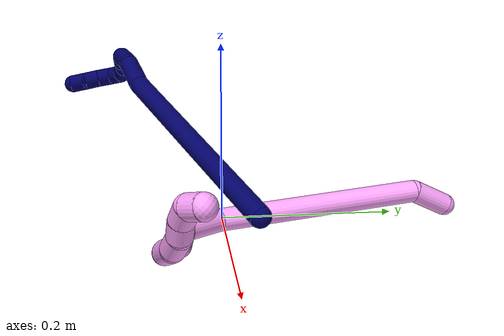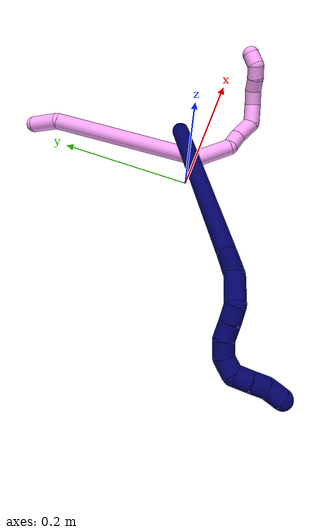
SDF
<sdf version="1.7">
 <world name="default">
  <model name="4">
   <static>0</static>
   <link name="4">
    <collision name="collision-cylinder-e_1_1_4">
     <pose>0.002263 -0.007897 -0.021047 2.78264 0.100343 0.540018</pose>
     <geometry><cylinder><radius>0.0125</radius><length>0.045187</length></cylinder></geometry>
     <surface>
      <friction><ode><mu>1.16</mu><mu2>1.16</mu2><slip1>0</slip1><slip2>0</slip2></ode></friction>
      <contact><ode><kp>1e+06</kp><kd>1</kd><max_vel>0</max_vel><min_depth>0.001</min_depth></ode></contact>
     </surface>
    </collision>
    <visual name="visual-cylinder-e_1_1_4">
     <pose>0.002263 -0.007897 -0.021047 2.78264 0.100343 0.540018</pose>
     <geometry><cylinder><radius>0.0125</radius><length>0.045187</length></cylinder></geometry>
     <material><ambient>1 0.65098 0.996078 1</ambient></material>
    </visual>
    <collision name="collision-cylinder-e_2_4_5">
     <pose>0.058489 -0.083415 -0.116185 2.40182 0.493549 1.15233</pose>
     <geometry><cylinder><radius>0.0125</radius><length>0.227806</length></cylinder></geometry>
     <surface>
      <friction><ode><mu>1.16</mu><mu2>1.16</mu2><slip1>0</slip1><slip2>0</slip2></ode></friction>
      <contact><ode><kp>1e+06</kp><kd>1</kd><max_vel>0</max_vel><min_depth>0.001</min_depth></ode></contact>
     </surface>
    </collision>
    <visual name="visual-cylinder-e_2_4_5">
     <pose>0.058489 -0.083415 -0.116185 2.40182 0.493549 1.15233</pose>
     <geometry><cylinder><radius>0.0125</radius><length>0.227806</length></cylinder></geometry>
     <material><ambient>1 0.65098 0.996078 1</ambient></material>
    </visual>
    <collision name="collision-cylinder-e_3_5_6">
     <pose>0.110232 -0.173163 -0.204871 2.15389 -0.083493 -0.154873</pose>
     <geometry><cylinder><radius>0.0125</radius><length>0.0532</length></cylinder></geometry>
     <surface>
      <friction><ode><mu>1.16</mu><mu2>1.16</mu2><slip1>0</slip1><slip2>0</slip2></ode></friction>
      <contact><ode><kp>1e+06</kp><kd>1</kd><max_vel>0</max_vel><min_depth>0.001</min_depth></ode></contact>
     </surface>
    </collision>
    <visual name="visual-cylinder-e_3_5_6">
     <pose>0.110232 -0.173163 -0.204871 2.15389 -0.083493 -0.154873</pose>
     <geometry><cylinder><radius>0.0125</radius><length>0.0532</length></cylinder></geometry>
     <material><ambient>1 0.65098 0.996078 1</ambient></material>
    </visual>
    <collision name="collision-cylinder-e_4_6_7">
     <pose>0.102267 -0.208069 -0.218458 1.49199 -0.421435 -0.390304</pose>
     <geometry><cylinder><radius>0.0125</radius><length>0.028095</length></cylinder></geometry>
     <surface>
      <friction><ode><mu>1.16</mu><mu2>1.16</mu2><slip1>0</slip1><slip2>0</slip2></ode></friction>
      <contact><ode><kp>1e+06</kp><kd>1</kd><max_vel>0</max_vel><min_depth>0.001</min_depth></ode></contact>
     </surface>
    </collision>
    <visual name="visual-cylinder-e_4_6_7">
     <pose>0.102267 -0.208069 -0.218458 1.49199 -0.421435 -0.390304</pose>
     <geometry><cylinder><radius>0.0125</radius><length>0.028095</length></cylinder></geometry>
     <material><ambient>1 0.65098 0.996078 1</ambient></material>
    </visual>
    <collision name="collision-cylinder-e_5_7_8">
     <pose>0.089416 -0.233741 -0.223483 2.00857 -0.462898 -0.709677</pose>
     <geometry><cylinder><radius>0.0125</radius><length>0.03182</length></cylinder></geometry>
     <surface>
      <friction><ode><mu>1.16</mu><mu2>1.16</mu2><slip1>0</slip1><slip2>0</slip2></ode></friction>
      <contact><ode><kp>1e+06</kp><kd>1</kd><max_vel>0</max_vel><min_depth>0.001</min_depth></ode></contact>
     </surface>
    </collision>
    <visual name="visual-cylinder-e_5_7_8">
     <pose>0.089416 -0.233741 -0.223483 2.00857 -0.462898 -0.709677</pose>
     <geometry><cylinder><radius>0.0125</radius><length>0.03182</length></cylinder></geometry>
     <material><ambient>1 0.65098 0.996078 1</ambient></material>
    </visual>
    <collision name="collision-cylinder-e_6_8_9">
     <pose>0.068033 -0.251804 -0.230907 1.83328 -1.21211 -1.46988</pose>
     <geometry><cylinder><radius>0.0125</radius><length>0.030498</length></cylinder></geometry>
     <surface>
      <friction><ode><mu>1.16</mu><mu2>1.16</mu2><slip1>0</slip1><slip2>0</slip2></ode></friction>
      <contact><ode><kp>1e+06</kp><kd>1</kd><max_vel>0</max_vel><min_depth>0.001</min_depth></ode></contact>
     </surface>
    </collision>
    <visual name="visual-cylinder-e_6_8_9">
     <pose>0.068033 -0.251804 -0.230907 1.83328 -1.21211 -1.46988</pose>
     <geometry><cylinder><radius>0.0125</radius><length>0.030498</length></cylinder></geometry>
     <material><ambient>1 0.65098 0.996078 1</ambient></material>
    </visual>
    <collision name="collision-cylinder-e_7_9_10">
     <pose>0.042667 -0.257197 -0.235618 3.07433 -1.2791 -3.0512</pose>
     <geometry><cylinder><radius>0.0125</radius><length>0.023152</length></cylinder></geometry>
     <surface>
      <friction><ode><mu>1.16</mu><mu2>1.16</mu2><slip1>0</slip1><slip2>0</slip2></ode></friction>
      <contact><ode><kp>1e+06</kp><kd>1</kd><max_vel>0</max_vel><min_depth>0.001</min_depth></ode></contact>
     </surface>
    </collision>
    <visual name="visual-cylinder-e_7_9_10">
     <pose>0.042667 -0.257197 -0.235618 3.07433 -1.2791 -3.0512</pose>
     <geometry><cylinder><radius>0.0125</radius><length>0.023152</length></cylinder></geometry>
     <material><ambient>1 0.65098 0.996078 1</ambient></material>
    </visual>
    <collision name="collision-cylinder-e_8_10_11">
     <pose>0.02324 -0.256218 -0.244368 -2.92361 -0.982772 2.73822</pose>
     <geometry><cylinder><radius>0.0125</radius><length>0.020049</length></cylinder></geometry>
     <surface>
      <friction><ode><mu>1.16</mu><mu2>1.16</mu2><slip1>0</slip1><slip2>0</slip2></ode></friction>
      <contact><ode><kp>1e+06</kp><kd>1</kd><max_vel>0</max_vel><min_depth>0.001</min_depth></ode></contact>
     </surface>
    </collision>
    <visual name="visual-cylinder-e_8_10_11">
     <pose>0.02324 -0.256218 -0.244368 -2.92361 -0.982772 2.73822</pose>
     <geometry><cylinder><radius>0.0125</radius><length>0.020049</length></cylinder></geometry>
     <material><ambient>1 0.65098 0.996078 1</ambient></material>
    </visual>
    <collision name="collision-cylinder-e_9_11_12">
     <pose>0.005469 -0.254442 -0.253199 -2.97456 -1.22012 2.90321</pose>
     <geometry><cylinder><radius>0.0125</radius><length>0.020081</length></cylinder></geometry>
     <surface>
      <friction><ode><mu>1.16</mu><mu2>1.16</mu2><slip1>0</slip1><slip2>0</slip2></ode></friction>
      <contact><ode><kp>1e+06</kp><kd>1</kd><max_vel>0</max_vel><min_depth>0.001</min_depth></ode></contact>
     </surface>
    </collision>
    <visual name="visual-cylinder-e_9_11_12">
     <pose>0.005469 -0.254442 -0.253199 -2.97456 -1.22012 2.90321</pose>
     <geometry><cylinder><radius>0.0125</radius><length>0.020081</length></cylinder></geometry>
     <material><ambient>1 0.65098 0.996078 1</ambient></material>
    </visual>
    <collision name="collision-cylinder-e_10_12_2">
     <pose>-0.013359 -0.255183 -0.253277 0.376565 -1.20751 -0.26132</pose>
     <geometry><cylinder><radius>0.0125</radius><length>0.020111</length></cylinder></geometry>
     <surface>
      <friction><ode><mu>1.16</mu><mu2>1.16</mu2><slip1>0</slip1><slip2>0</slip2></ode></friction>
      <contact><ode><kp>1e+06</kp><kd>1</kd><max_vel>0</max_vel><min_depth>0.001</min_depth></ode></contact>
     </surface>
    </collision>
    <visual name="visual-cylinder-e_10_12_2">
     <pose>-0.013359 -0.255183 -0.253277 0.376565 -1.20751 -0.26132</pose>
     <geometry><cylinder><radius>0.0125</radius><length>0.020111</length></cylinder></geometry>
     <material><ambient>1 0.65098 0.996078 1</ambient></material>
    </visual>
    <collision name="collision-sphere-2">
     <pose>-0.022758 -0.256497 -0.249954 0 -0 0</pose>
     <geometry><sphere><radius>0.0125</radius></sphere></geometry>
     <surface>
      <friction><ode><mu>1.16</mu><mu2>1.16</mu2><slip1>0</slip1><slip2>0</slip2></ode></friction>
      <contact><ode><kp>1e+06</kp><kd>1</kd><max_vel>0</max_vel><min_depth>0.001</min_depth></ode></contact>
     </surface>
    </collision>
    <visual name="visual-sphere-2">
     <pose>-0.022758 -0.256497 -0.249954 0 -0 0</pose>
     <geometry><sphere><radius>0.0125</radius></sphere></geometry>
     <material><ambient>1 0.65098 0.996078 1</ambient></material>
    </visual>
    <collision name="collision-sphere-12">
     <pose>-0.00396 -0.253869 -0.2566 0 -0 0</pose>
     <geometry><sphere><radius>0.0125</radius></sphere></geometry>
     <surface>
      <friction><ode><mu>1.16</mu><mu2>1.16</mu2><slip1>0</slip1><slip2>0</slip2></ode></friction>
      <contact><ode><kp>1e+06</kp><kd>1</kd><max_vel>0</max_vel><min_depth>0.001</min_depth></ode></contact>
     </surface>
    </collision>
    <visual name="visual-sphere-12">
     <pose>-0.00396 -0.253869 -0.2566 0 -0 0</pose>
     <geometry><sphere><radius>0.0125</radius></sphere></geometry>
     <material><ambient>1 0.65098 0.996078 1</ambient></material>
    </visual>
    <collision name="collision-sphere-11">
     <pose>0.014899 -0.255016 -0.249798 0 -0 0</pose>
     <geometry><sphere><radius>0.0125</radius></sphere></geometry>
     <surface>
      <friction><ode><mu>1.16</mu><mu2>1.16</mu2><slip1>0</slip1><slip2>0</slip2></ode></friction>
      <contact><ode><kp>1e+06</kp><kd>1</kd><max_vel>0</max_vel><min_depth>0.001</min_depth></ode></contact>
     </surface>
    </collision>
    <visual name="visual-sphere-11">
     <pose>0.014899 -0.255016 -0.249798 0 -0 0</pose>
     <geometry><sphere><radius>0.0125</radius></sphere></geometry>
     <material><ambient>1 0.65098 0.996078 1</ambient></material>
    </visual>
    <collision name="collision-sphere-10">
     <pose>0.03158 -0.257421 -0.238939 0 -0 0</pose>
     <geometry><sphere><radius>0.0125</radius></sphere></geometry>
     <surface>
      <friction><ode><mu>1.16</mu><mu2>1.16</mu2><slip1>0</slip1><slip2>0</slip2></ode></friction>
      <contact><ode><kp>1e+06</kp><kd>1</kd><max_vel>0</max_vel><min_depth>0.001</min_depth></ode></contact>
     </surface>
    </collision>
    <visual name="visual-sphere-10">
     <pose>0.03158 -0.257421 -0.238939 0 -0 0</pose>
     <geometry><sphere><radius>0.0125</radius></sphere></geometry>
     <material><ambient>1 0.65098 0.996078 1</ambient></material>
    </visual>
    <collision name="collision-sphere-9">
     <pose>0.053755 -0.256973 -0.232296 0 -0 0</pose>
     <geometry><sphere><radius>0.0125</radius></sphere></geometry>
     <surface>
      <friction><ode><mu>1.16</mu><mu2>1.16</mu2><slip1>0</slip1><slip2>0</slip2></ode></friction>
      <contact><ode><kp>1e+06</kp><kd>1</kd><max_vel>0</max_vel><min_depth>0.001</min_depth></ode></contact>
     </surface>
    </collision>
    <visual name="visual-sphere-9">
     <pose>0.053755 -0.256973 -0.232296 0 -0 0</pose>
     <geometry><sphere><radius>0.0125</radius></sphere></geometry>
     <material><ambient>1 0.65098 0.996078 1</ambient></material>
    </visual>
    <collision name="collision-sphere-4">
     <pose>0.004527 -0.015794 -0.042095 0 -0 0</pose>
     <geometry><sphere><radius>0.0125</radius></sphere></geometry>
     <surface>
      <friction><ode><mu>1.16</mu><mu2>1.16</mu2><slip1>0</slip1><slip2>0</slip2></ode></friction>
      <contact><ode><kp>1e+06</kp><kd>1</kd><max_vel>0</max_vel><min_depth>0.001</min_depth></ode></contact>
     </surface>
    </collision>
    <visual name="visual-sphere-4">
     <pose>0.004527 -0.015794 -0.042095 0 -0 0</pose>
     <geometry><sphere><radius>0.0125</radius></sphere></geometry>
     <material><ambient>1 0.65098 0.996078 1</ambient></material>
    </visual>
    <collision name="collision-sphere-1">
     <geometry><sphere><radius>0.0125</radius></sphere></geometry>
     <surface>
      <friction><ode><mu>1.16</mu><mu2>1.16</mu2><slip1>0</slip1><slip2>0</slip2></ode></friction>
      <contact><ode><kp>1e+06</kp><kd>1</kd><max_vel>0</max_vel><min_depth>0.001</min_depth></ode></contact>
     </surface>
    </collision>
    <visual name="visual-sphere-1">
     <geometry><sphere><radius>0.0125</radius></sphere></geometry>
     <material><ambient>1 0.65098 0.996078 1</ambient></material>
    </visual>
    <collision name="collision-sphere-8">
     <pose>0.082312 -0.246634 -0.229518 0 -0 0</pose>
     <geometry><sphere><radius>0.0125</radius></sphere></geometry>
     <surface>
      <friction><ode><mu>1.16</mu><mu2>1.16</mu2><slip1>0</slip1><slip2>0</slip2></ode></friction>
      <contact><ode><kp>1e+06</kp><kd>1</kd><max_vel>0</max_vel><min_depth>0.001</min_depth></ode></contact>
     </surface>
    </collision>
    <visual name="visual-sphere-8">
     <pose>0.082312 -0.246634 -0.229518 0 -0 0</pose>
     <geometry><sphere><radius>0.0125</radius></sphere></geometry>
     <material><ambient>1 0.65098 0.996078 1</ambient></material>
    </visual>
    <collision name="collision-sphere-5">
     <pose>0.112451 -0.151035 -0.190276 0 -0 0</pose>
     <geometry><sphere><radius>0.0125</radius></sphere></geometry>
     <surface>
      <friction><ode><mu>1.16</mu><mu2>1.16</mu2><slip1>0</slip1><slip2>0</slip2></ode></friction>
      <contact><ode><kp>1e+06</kp><kd>1</kd><max_vel>0</max_vel><min_depth>0.001</min_depth></ode></contact>
     </surface>
    </collision>
    <visual name="visual-sphere-5">
     <pose>0.112451 -0.151035 -0.190276 0 -0 0</pose>
     <geometry><sphere><radius>0.0125</radius></sphere></geometry>
     <material><ambient>1 0.65098 0.996078 1</ambient></material>
    </visual>
    <collision name="collision-sphere-6">
     <pose>0.108014 -0.19529 -0.219467 0 -0 0</pose>
     <geometry><sphere><radius>0.0125</radius></sphere></geometry>
     <surface>
      <friction><ode><mu>1.16</mu><mu2>1.16</mu2><slip1>0</slip1><slip2>0</slip2></ode></friction>
      <contact><ode><kp>1e+06</kp><kd>1</kd><max_vel>0</max_vel><min_depth>0.001</min_depth></ode></contact>
     </surface>
    </collision>
    <visual name="visual-sphere-6">
     <pose>0.108014 -0.19529 -0.219467 0 -0 0</pose>
     <geometry><sphere><radius>0.0125</radius></sphere></geometry>
     <material><ambient>1 0.65098 0.996078 1</ambient></material>
    </visual>
    <collision name="collision-sphere-7">
     <pose>0.096521 -0.220848 -0.217448 0 -0 0</pose>
     <geometry><sphere><radius>0.0125</radius></sphere></geometry>
     <surface>
      <friction><ode><mu>1.16</mu><mu2>1.16</mu2><slip1>0</slip1><slip2>0</slip2></ode></friction>
      <contact><ode><kp>1e+06</kp><kd>1</kd><max_vel>0</max_vel><min_depth>0.001</min_depth></ode></contact>
     </surface>
    </collision>
    <visual name="visual-sphere-7">
     <pose>0.096521 -0.220848 -0.217448 0 -0 0</pose>
     <geometry><sphere><radius>0.0125</radius></sphere></geometry>
     <material><ambient>1 0.65098 0.996078 1</ambient></material>
    </visual>
    <inertial>
     <pose>0.056758 -0.141735 -0.158283 0 -0 0</pose>
     <mass>0.5</mass>
     <inertia>
      <ixx>0.001179</ixx>
      <ixy>0</ixy>
      <ixz>0</ixz>
      <iyy>0.000764</iyy>
      <iyz>0</iyz>
      <izz>0.000135</izz>
     </inertia>
    </inertial>
   </link>
   <pose>0.012593 0.260473 0.011473 2.58499 0.613227 -2.48418</pose>
  </model>
  <model name="7">
   <static>0</static>
   <link name="7">
    <collision name="collision-cylinder-e_1_1_4">
     <pose>-0.001382 0.000611 0.139871 -0.004367 -0.009877 2.2e-05</pose>
     <geometry><cylinder><radius>0.0125</radius><length>0.279759</length></cylinder></geometry>
     <surface>
      <friction><ode><mu>1.16</mu><mu2>1.16</mu2><slip1>0</slip1><slip2>0</slip2></ode></friction>
      <contact><ode><kp>1e+06</kp><kd>1</kd><max_vel>0</max_vel><min_depth>0.001</min_depth></ode></contact>
     </surface>
    </collision>
    <visual name="visual-cylinder-e_1_1_4">
     <pose>-0.001382 0.000611 0.139871 -0.004367 -0.009877 2.2e-05</pose>
     <geometry><cylinder><radius>0.0125</radius><length>0.279759</length></cylinder></geometry>
     <material><ambient>0.003922 0 0.403922 1</ambient></material>
    </visual>
    <collision name="collision-cylinder-e_2_4_5">
     <pose>-0.002519 0.006185 0.300414 -0.235655 0.011491 -0.00136</pose>
     <geometry><cylinder><radius>0.0125</radius><length>0.04252</length></cylinder></geometry>
     <surface>
      <friction><ode><mu>1.16</mu><mu2>1.16</mu2><slip1>0</slip1><slip2>0</slip2></ode></friction>
      <contact><ode><kp>1e+06</kp><kd>1</kd><max_vel>0</max_vel><min_depth>0.001</min_depth></ode></contact>
     </surface>
    </collision>
    <visual name="visual-cylinder-e_2_4_5">
     <pose>-0.002519 0.006185 0.300414 -0.235655 0.011491 -0.00136</pose>
     <geometry><cylinder><radius>0.0125</radius><length>0.04252</length></cylinder></geometry>
     <material><ambient>0.003922 0 0.403922 1</ambient></material>
    </visual>
    <collision name="collision-cylinder-e_3_5_6">
     <pose>-0.008325 0.008704 0.338524 0.139257 -0.330975 -0.023295</pose>
     <geometry><cylinder><radius>0.0125</radius><length>0.03724</length></cylinder></geometry>
     <surface>
      <friction><ode><mu>1.16</mu><mu2>1.16</mu2><slip1>0</slip1><slip2>0</slip2></ode></friction>
      <contact><ode><kp>1e+06</kp><kd>1</kd><max_vel>0</max_vel><min_depth>0.001</min_depth></ode></contact>
     </surface>
    </collision>
    <visual name="visual-cylinder-e_3_5_6">
     <pose>-0.008325 0.008704 0.338524 0.139257 -0.330975 -0.023295</pose>
     <geometry><cylinder><radius>0.0125</radius><length>0.03724</length></cylinder></geometry>
     <material><ambient>0.003922 0 0.403922 1</ambient></material>
    </visual>
    <collision name="collision-cylinder-e_4_6_7">
     <pose>-0.021409 0.00119 0.360996 0.789107 -0.777563 -0.33788</pose>
     <geometry><cylinder><radius>0.0125</radius><length>0.02005</length></cylinder></geometry>
     <surface>
      <friction><ode><mu>1.16</mu><mu2>1.16</mu2><slip1>0</slip1><slip2>0</slip2></ode></friction>
      <contact><ode><kp>1e+06</kp><kd>1</kd><max_vel>0</max_vel><min_depth>0.001</min_depth></ode></contact>
     </surface>
    </collision>
    <visual name="visual-cylinder-e_4_6_7">
     <pose>-0.021409 0.00119 0.360996 0.789107 -0.777563 -0.33788</pose>
     <geometry><cylinder><radius>0.0125</radius><length>0.02005</length></cylinder></geometry>
     <material><ambient>0.003922 0 0.403922 1</ambient></material>
    </visual>
    <collision name="collision-cylinder-e_5_7_8">
     <pose>-0.035884 -0.008928 0.370723 0.821665 -0.823627 -0.376054</pose>
     <geometry><cylinder><radius>0.0125</radius><length>0.020288</length></cylinder></geometry>
     <surface>
      <friction><ode><mu>1.16</mu><mu2>1.16</mu2><slip1>0</slip1><slip2>0</slip2></ode></friction>
      <contact><ode><kp>1e+06</kp><kd>1</kd><max_vel>0</max_vel><min_depth>0.001</min_depth></ode></contact>
     </surface>
    </collision>
    <visual name="visual-cylinder-e_5_7_8">
     <pose>-0.035884 -0.008928 0.370723 0.821665 -0.823627 -0.376054</pose>
     <geometry><cylinder><radius>0.0125</radius><length>0.020288</length></cylinder></geometry>
     <material><ambient>0.003922 0 0.403922 1</ambient></material>
    </visual>
    <collision name="collision-cylinder-e_6_8_9">
     <pose>-0.048005 -0.020614 0.381266 0.848517 -0.486585 -0.223295</pose>
     <geometry><cylinder><radius>0.0125</radius><length>0.020017</length></cylinder></geometry>
     <surface>
      <friction><ode><mu>1.16</mu><mu2>1.16</mu2><slip1>0</slip1><slip2>0</slip2></ode></friction>
      <contact><ode><kp>1e+06</kp><kd>1</kd><max_vel>0</max_vel><min_depth>0.001</min_depth></ode></contact>
     </surface>
    </collision>
    <visual name="visual-cylinder-e_6_8_9">
     <pose>-0.048005 -0.020614 0.381266 0.848517 -0.486585 -0.223295</pose>
     <geometry><cylinder><radius>0.0125</radius><length>0.020017</length></cylinder></geometry>
     <material><ambient>0.003922 0 0.403922 1</ambient></material>
    </visual>
    <collision name="collision-cylinder-e_7_9_10">
     <pose>-0.05226 -0.033681 0.394837 0.694261 0.042296 0.015304</pose>
     <geometry><cylinder><radius>0.0125</radius><length>0.020114</length></cylinder></geometry>
     <surface>
      <friction><ode><mu>1.16</mu><mu2>1.16</mu2><slip1>0</slip1><slip2>0</slip2></ode></friction>
      <contact><ode><kp>1e+06</kp><kd>1</kd><max_vel>0</max_vel><min_depth>0.001</min_depth></ode></contact>
     </surface>
    </collision>
    <visual name="visual-cylinder-e_7_9_10">
     <pose>-0.05226 -0.033681 0.394837 0.694261 0.042296 0.015304</pose>
     <geometry><cylinder><radius>0.0125</radius><length>0.020114</length></cylinder></geometry>
     <material><ambient>0.003922 0 0.403922 1</ambient></material>
    </visual>
    <collision name="collision-cylinder-e_8_10_11">
     <pose>-0.04546 -0.046767 0.406439 1.04307 0.691154 0.407985</pose>
     <geometry><cylinder><radius>0.0125</radius><length>0.020001</length></cylinder></geometry>
     <surface>
      <friction><ode><mu>1.16</mu><mu2>1.16</mu2><slip1>0</slip1><slip2>0</slip2></ode></friction>
      <contact><ode><kp>1e+06</kp><kd>1</kd><max_vel>0</max_vel><min_depth>0.001</min_depth></ode></contact>
     </surface>
    </collision>
    <visual name="visual-cylinder-e_8_10_11">
     <pose>-0.04546 -0.046767 0.406439 1.04307 0.691154 0.407985</pose>
     <geometry><cylinder><radius>0.0125</radius><length>0.020001</length></cylinder></geometry>
     <material><ambient>0.003922 0 0.403922 1</ambient></material>
    </visual>
    <collision name="collision-cylinder-e_9_11_12">
     <pose>-0.032677 -0.060292 0.413757 1.10669 0.695442 0.440515</pose>
     <geometry><cylinder><radius>0.0125</radius><length>0.020004</length></cylinder></geometry>
     <surface>
      <friction><ode><mu>1.16</mu><mu2>1.16</mu2><slip1>0</slip1><slip2>0</slip2></ode></friction>
      <contact><ode><kp>1e+06</kp><kd>1</kd><max_vel>0</max_vel><min_depth>0.001</min_depth></ode></contact>
     </surface>
    </collision>
    <visual name="visual-cylinder-e_9_11_12">
     <pose>-0.032677 -0.060292 0.413757 1.10669 0.695442 0.440515</pose>
     <geometry><cylinder><radius>0.0125</radius><length>0.020004</length></cylinder></geometry>
     <material><ambient>0.003922 0 0.403922 1</ambient></material>
    </visual>
    <collision name="collision-cylinder-e_10_12_2">
     <pose>-0.021913 -0.074229 0.422773 0.902823 0.450456 0.221242</pose>
     <geometry><cylinder><radius>0.0125</radius><length>0.020006</length></cylinder></geometry>
     <surface>
      <friction><ode><mu>1.16</mu><mu2>1.16</mu2><slip1>0</slip1><slip2>0</slip2></ode></friction>
      <contact><ode><kp>1e+06</kp><kd>1</kd><max_vel>0</max_vel><min_depth>0.001</min_depth></ode></contact>
     </surface>
    </collision>
    <visual name="visual-cylinder-e_10_12_2">
     <pose>-0.021913 -0.074229 0.422773 0.902823 0.450456 0.221242</pose>
     <geometry><cylinder><radius>0.0125</radius><length>0.020006</length></cylinder></geometry>
     <material><ambient>0.003922 0 0.403922 1</ambient></material>
    </visual>
    <collision name="collision-sphere-2">
     <pose>-0.017558 -0.081298 0.42835 0 -0 0</pose>
     <geometry><sphere><radius>0.0125</radius></sphere></geometry>
     <surface>
      <friction><ode><mu>1.16</mu><mu2>1.16</mu2><slip1>0</slip1><slip2>0</slip2></ode></friction>
      <contact><ode><kp>1e+06</kp><kd>1</kd><max_vel>0</max_vel><min_depth>0.001</min_depth></ode></contact>
     </surface>
    </collision>
    <visual name="visual-sphere-2">
     <pose>-0.017558 -0.081298 0.42835 0 -0 0</pose>
     <geometry><sphere><radius>0.0125</radius></sphere></geometry>
     <material><ambient>0.003922 0 0.403922 1</ambient></material>
    </visual>
    <collision name="collision-sphere-12">
     <pose>-0.026268 -0.067159 0.417195 0 -0 0</pose>
     <geometry><sphere><radius>0.0125</radius></sphere></geometry>
     <surface>
      <friction><ode><mu>1.16</mu><mu2>1.16</mu2><slip1>0</slip1><slip2>0</slip2></ode></friction>
      <contact><ode><kp>1e+06</kp><kd>1</kd><max_vel>0</max_vel><min_depth>0.001</min_depth></ode></contact>
     </surface>
    </collision>
    <visual name="visual-sphere-12">
     <pose>-0.026268 -0.067159 0.417195 0 -0 0</pose>
     <geometry><sphere><radius>0.0125</radius></sphere></geometry>
     <material><ambient>0.003922 0 0.403922 1</ambient></material>
    </visual>
    <collision name="collision-sphere-11">
     <pose>-0.039086 -0.053424 0.41032 0 -0 0</pose>
     <geometry><sphere><radius>0.0125</radius></sphere></geometry>
     <surface>
      <friction><ode><mu>1.16</mu><mu2>1.16</mu2><slip1>0</slip1><slip2>0</slip2></ode></friction>
      <contact><ode><kp>1e+06</kp><kd>1</kd><max_vel>0</max_vel><min_depth>0.001</min_depth></ode></contact>
     </surface>
    </collision>
    <visual name="visual-sphere-11">
     <pose>-0.039086 -0.053424 0.41032 0 -0 0</pose>
     <geometry><sphere><radius>0.0125</radius></sphere></geometry>
     <material><ambient>0.003922 0 0.403922 1</ambient></material>
    </visual>
    <collision name="collision-sphere-10">
     <pose>-0.051835 -0.04011 0.402559 0 -0 0</pose>
     <geometry><sphere><radius>0.0125</radius></sphere></geometry>
     <surface>
      <friction><ode><mu>1.16</mu><mu2>1.16</mu2><slip1>0</slip1><slip2>0</slip2></ode></friction>
      <contact><ode><kp>1e+06</kp><kd>1</kd><max_vel>0</max_vel><min_depth>0.001</min_depth></ode></contact>
     </surface>
    </collision>
    <visual name="visual-sphere-10">
     <pose>-0.051835 -0.04011 0.402559 0 -0 0</pose>
     <geometry><sphere><radius>0.0125</radius></sphere></geometry>
     <material><ambient>0.003922 0 0.403922 1</ambient></material>
    </visual>
    <collision name="collision-sphere-9">
     <pose>-0.052685 -0.027252 0.387115 0 -0 0</pose>
     <geometry><sphere><radius>0.0125</radius></sphere></geometry>
     <surface>
      <friction><ode><mu>1.16</mu><mu2>1.16</mu2><slip1>0</slip1><slip2>0</slip2></ode></friction>
      <contact><ode><kp>1e+06</kp><kd>1</kd><max_vel>0</max_vel><min_depth>0.001</min_depth></ode></contact>
     </surface>
    </collision>
    <visual name="visual-sphere-9">
     <pose>-0.052685 -0.027252 0.387115 0 -0 0</pose>
     <geometry><sphere><radius>0.0125</radius></sphere></geometry>
     <material><ambient>0.003922 0 0.403922 1</ambient></material>
    </visual>
    <collision name="collision-sphere-4">
     <pose>-0.002763 0.001222 0.279742 0 -0 0</pose>
     <geometry><sphere><radius>0.0125</radius></sphere></geometry>
     <surface>
      <friction><ode><mu>1.16</mu><mu2>1.16</mu2><slip1>0</slip1><slip2>0</slip2></ode></friction>
      <contact><ode><kp>1e+06</kp><kd>1</kd><max_vel>0</max_vel><min_depth>0.001</min_depth></ode></contact>
     </surface>
    </collision>
    <visual name="visual-sphere-4">
     <pose>-0.002763 0.001222 0.279742 0 -0 0</pose>
     <geometry><sphere><radius>0.0125</radius></sphere></geometry>
     <material><ambient>0.003922 0 0.403922 1</ambient></material>
    </visual>
    <collision name="collision-sphere-1">
     <geometry><sphere><radius>0.0125</radius></sphere></geometry>
     <surface>
      <friction><ode><mu>1.16</mu><mu2>1.16</mu2><slip1>0</slip1><slip2>0</slip2></ode></friction>
      <contact><ode><kp>1e+06</kp><kd>1</kd><max_vel>0</max_vel><min_depth>0.001</min_depth></ode></contact>
     </surface>
    </collision>
    <visual name="visual-sphere-1">
     <geometry><sphere><radius>0.0125</radius></sphere></geometry>
     <material><ambient>0.003922 0 0.403922 1</ambient></material>
    </visual>
    <collision name="collision-sphere-8">
     <pose>-0.043325 -0.013976 0.375417 0 -0 0</pose>
     <geometry><sphere><radius>0.0125</radius></sphere></geometry>
     <surface>
      <friction><ode><mu>1.16</mu><mu2>1.16</mu2><slip1>0</slip1><slip2>0</slip2></ode></friction>
      <contact><ode><kp>1e+06</kp><kd>1</kd><max_vel>0</max_vel><min_depth>0.001</min_depth></ode></contact>
     </surface>
    </collision>
    <visual name="visual-sphere-8">
     <pose>-0.043325 -0.013976 0.375417 0 -0 0</pose>
     <geometry><sphere><radius>0.0125</radius></sphere></geometry>
     <material><ambient>0.003922 0 0.403922 1</ambient></material>
    </visual>
    <collision name="collision-sphere-5">
     <pose>-0.002274 0.011149 0.321085 0 -0 0</pose>
     <geometry><sphere><radius>0.0125</radius></sphere></geometry>
     <surface>
      <friction><ode><mu>1.16</mu><mu2>1.16</mu2><slip1>0</slip1><slip2>0</slip2></ode></friction>
      <contact><ode><kp>1e+06</kp><kd>1</kd><max_vel>0</max_vel><min_depth>0.001</min_depth></ode></contact>
     </surface>
    </collision>
    <visual name="visual-sphere-5">
     <pose>-0.002274 0.011149 0.321085 0 -0 0</pose>
     <geometry><sphere><radius>0.0125</radius></sphere></geometry>
     <material><ambient>0.003922 0 0.403922 1</ambient></material>
    </visual>
    <collision name="collision-sphere-6">
     <pose>-0.014376 0.00626 0.355963 0 -0 0</pose>
     <geometry><sphere><radius>0.0125</radius></sphere></geometry>
     <surface>
      <friction><ode><mu>1.16</mu><mu2>1.16</mu2><slip1>0</slip1><slip2>0</slip2></ode></friction>
      <contact><ode><kp>1e+06</kp><kd>1</kd><max_vel>0</max_vel><min_depth>0.001</min_depth></ode></contact>
     </surface>
    </collision>
    <visual name="visual-sphere-6">
     <pose>-0.014376 0.00626 0.355963 0 -0 0</pose>
     <geometry><sphere><radius>0.0125</radius></sphere></geometry>
     <material><ambient>0.003922 0 0.403922 1</ambient></material>
    </visual>
    <collision name="collision-sphere-7">
     <pose>-0.028442 -0.00388 0.366028 0 -0 0</pose>
     <geometry><sphere><radius>0.0125</radius></sphere></geometry>
     <surface>
      <friction><ode><mu>1.16</mu><mu2>1.16</mu2><slip1>0</slip1><slip2>0</slip2></ode></friction>
      <contact><ode><kp>1e+06</kp><kd>1</kd><max_vel>0</max_vel><min_depth>0.001</min_depth></ode></contact>
     </surface>
    </collision>
    <visual name="visual-sphere-7">
     <pose>-0.028442 -0.00388 0.366028 0 -0 0</pose>
     <geometry><sphere><radius>0.0125</radius></sphere></geometry>
     <material><ambient>0.003922 0 0.403922 1</ambient></material>
    </visual>
    <inertial>
     <pose>-0.011949 -0.008232 0.239415 0 -0 0</pose>
     <mass>0.5</mass>
     <inertia><ixx>0.001856</ixx><ixy>0</ixy><ixz>0</ixz><iyy>0.00185</iyy><iyz>0</iyz><izz>5.1e-05</izz></inertia>
    </inertial>
   </link>
   <pose>0.071887 0.034255 0.026801 1.14171 -0.391986 -0.860362</pose>
  </model>
 </world>
</sdf>
